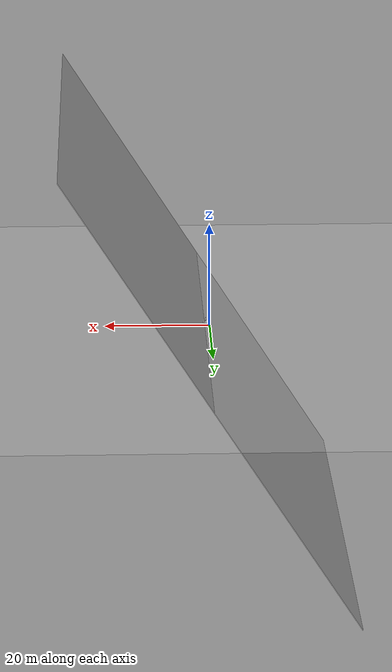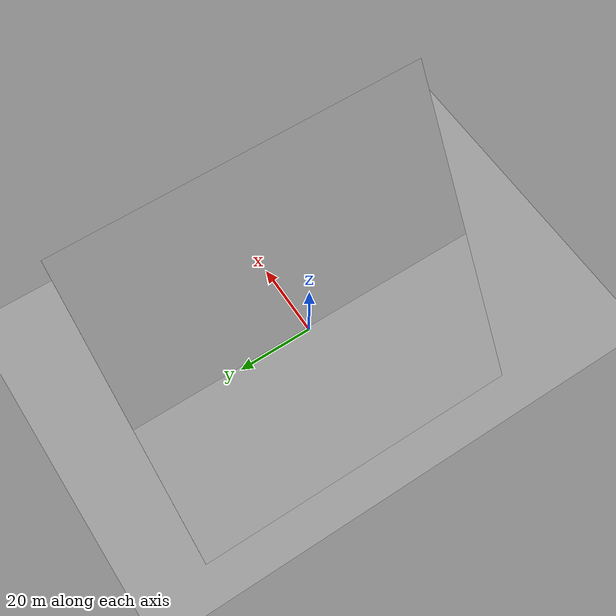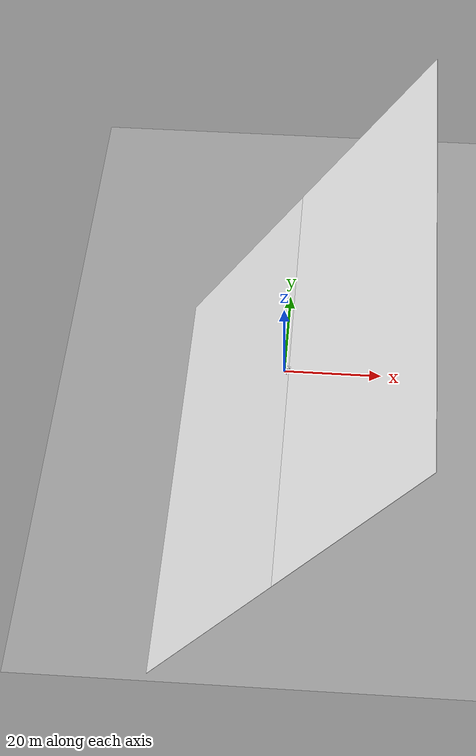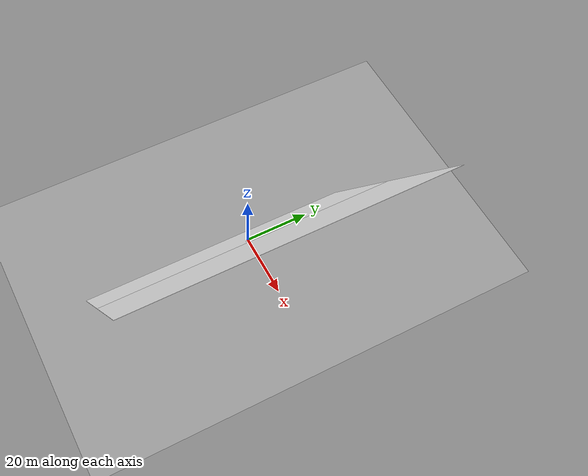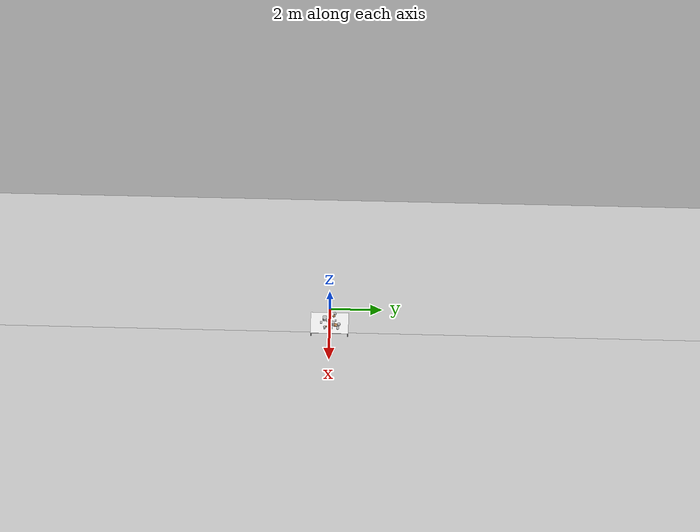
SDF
<sdf version="1.6">
 <world name="default">
  <model name="ground_plane">
   <static>1</static>
   <link name="link">
    <collision name="collision">
     <geometry><plane><normal>0 0 1</normal><size>100 100</size></plane></geometry>
     <surface><friction><ode><mu>100</mu><mu2>50</mu2></ode></friction></surface>
    </collision>
    <visual name="visual">
     <cast_shadows>0</cast_shadows>
     <geometry><plane><normal>0 0 1</normal><size>100 100</size></plane></geometry>
     <material>
      <script><uri>file://media/materials/scripts/gazebo.material</uri><name>Gazebo/Grey</name></script>
     </material>
    </visual>
   </link>
  </model>
  <model name="wall_plane">
   <pose>1.0 0 0 0 -1.0 0</pose>
   <static>1</static>
   <link name="link">
    <collision name="collision">
     <geometry><plane><normal>0 0 1</normal><size>100 100</size></plane></geometry>
     <surface><friction><ode><mu>100</mu><mu2>50</mu2></ode></friction></surface>
    </collision>
    <visual name="visual">
     <cast_shadows>0</cast_shadows>
     <geometry><plane><normal>0 0 1</normal><size>100 100</size></plane></geometry>
     <material>
      <script><uri>file://media/materials/scripts/gazebo.material</uri><name>Gazebo/White</name></script>
     </material>
    </visual>
   </link>
  </model>
  <gravity>0 0 -9.8</gravity>
  <magnetic_field>6e-06 2.3e-05 -4.2e-05</magnetic_field>
  <atmosphere type="adiabatic"/>
  <physics name="default_physics" default="0" type="ode">
   <max_step_size>0.001</max_step_size>
   <real_time_factor>1</real_time_factor>
   <real_time_update_rate>1000</real_time_update_rate>
  </physics>
  <scene><ambient>0.4 0.4 0.4 1</ambient><background>0.7 0.7 0.7 1</background><shadows>1</shadows></scene>
  <spherical_coordinates>
   <surface_model>EARTH_WGS84</surface_model>
   <latitude_deg>0</latitude_deg>
   <longitude_deg>0</longitude_deg>
   <elevation>0</elevation>
   <heading_deg>0</heading_deg>
  </spherical_coordinates>
  <model name="kinect2_victor_head">
   <pose>0.07 0 1.5 0 0.5 0</pose>
   <static>1</static>
   <link name="kinect2_victor_head">
    <inertial>
     <mass>1</mass>
     <inertia><ixx>1</ixx><ixy>0</ixy><ixz>0</ixz><iyy>1</iyy><iyz>0</iyz><izz>1</izz></inertia>
    </inertial>
    <collision name="collision"><geometry><box><size>0.1 0.1 0.1</size></box></geometry></collision>
    <visual name="visual"><geometry><box><size>0.1 0.1 0.1</size></box></geometry></visual>
    <sensor name="camera" type="depth">
     <camera name="__default__">
      <horizontal_fov>1.578</horizontal_fov>
      <image><width>1920</width><height>1080</height><format>B8G8R8</format></image>
      <clip><near>0.05</near><far>2.5</far></clip>
      <depth_camera><output>depths</output></depth_camera>
     </camera>
     <plugin name="kinect2_victor_head_plugin" filename="libgazebo_ros_openni_kinect.so">
      <cameraName>kinect2_victor_head</cameraName>
      <alwaysOn>1</alwaysOn>
      <updateRate>3</updateRate>
      <imageTopicName>hd/image_color_rect</imageTopicName>
      <depthImageTopicName>hd/image_depth_rect</depthImageTopicName>
      <pointCloudTopicName>hd/points</pointCloudTopicName>
      <cameraInfoTopicName>hd/camera_info</cameraInfoTopicName>
      <depthImageCameraInfoTopicName>hd/camera_info</depthImageCameraInfoTopicName>
      <frameName>kinect2_victor_head_optical_frame</frameName>
      <baseline>0.07</baseline>
      <distortion_k1>0.0</distortion_k1>
      <distortion_k2>0.0</distortion_k2>
      <distortion_k3>0.0</distortion_k3>
      <distortion_t1>0.0</distortion_t1>
      <distortion_t2>0.0</distortion_t2>
      <pointCloudCutoff>0.05</pointCloudCutoff>
      <robotNamespace>/</robotNamespace>
     </plugin>
     <always_on>1</always_on>
     <update_rate>3</update_rate>
    </sensor>
    <gravity>0</gravity>
   </link>
  </model>
  <model name="table">
   <static>1</static>
   <link name="link">
    <collision name="surface">
     <pose>0 0 1 0 -0 0</pose>
     <geometry><box><size>1.5 0.8 0.03</size></box></geometry>
     <surface><friction><ode><mu>0.6</mu><mu2>0.6</mu2></ode></friction></surface>
    </collision>
    <visual name="visual1">
     <pose>0 0 1 0 -0 0</pose>
     <geometry><box><size>1.4 0.8 0.04</size></box></geometry>
     <material>
      <script><uri>file://media/materials/scripts/gazebo.material</uri><name>Gazebo/White</name></script>
     </material>
    </visual>
    <collision name="front_left_leg">
     <pose>0.68 0.38 0.5 0 -0 0</pose>
     <geometry><cylinder><radius>0.02</radius><length>1</length></cylinder></geometry>
    </collision>
    <visual name="front_left_leg">
     <pose>0.68 0.38 0.5 0 -0 0</pose>
     <geometry><cylinder><radius>0.02</radius><length>1</length></cylinder></geometry>
     <material>
      <script><uri>file://media/materials/scripts/gazebo.material</uri><name>Gazebo/Grey</name></script>
     </material>
    </visual>
    <collision name="front_right_leg">
     <pose>0.68 -0.38 0.5 0 -0 0</pose>
     <geometry><cylinder><radius>0.02</radius><length>1</length></cylinder></geometry>
    </collision>
    <visual name="front_right_leg">
     <pose>0.68 -0.38 0.5 0 -0 0</pose>
     <geometry><cylinder><radius>0.02</radius><length>1</length></cylinder></geometry>
     <material>
      <script><uri>file://media/materials/scripts/gazebo.material</uri><name>Gazebo/Grey</name></script>
     </material>
    </visual>
    <collision name="back_right_leg">
     <pose>-0.68 -0.38 0.5 0 -0 0</pose>
     <geometry><cylinder><radius>0.02</radius><length>1</length></cylinder></geometry>
    </collision>
    <visual name="back_right_leg">
     <pose>-0.68 -0.38 0.5 0 -0 0</pose>
     <geometry><cylinder><radius>0.02</radius><length>1</length></cylinder></geometry>
     <material>
      <script><uri>file://media/materials/scripts/gazebo.material</uri><name>Gazebo/Grey</name></script>
     </material>
    </visual>
    <collision name="back_left_leg">
     <pose>-0.68 0.38 0.5 0 -0 0</pose>
     <geometry><cylinder><radius>0.02</radius><length>1</length></cylinder></geometry>
    </collision>
    <visual name="back_left_leg">
     <pose>-0.68 0.38 0.5 0 -0 0</pose>
     <geometry><cylinder><radius>0.02</radius><length>1</length></cylinder></geometry>
     <material>
      <script><uri>file://media/materials/scripts/gazebo.material</uri><name>Gazebo/Grey</name></script>
     </material>
    </visual>
    <inertial>
     <inertia><ixx>1</ixx><ixy>0</ixy><ixz>0</ixz><iyy>1</iyy><iyz>0</iyz><izz>1</izz></inertia>
     <mass>1</mass>
    </inertial>
   </link>
   <pose>0.8 0 -0.2 0 0 -1.5708</pose>
  </model>
  <model name="beer">
   <link name="link">
    <pose>0 0 0.115 0 -0 0</pose>
    <inertial>
     <mass>0.39</mass>
     <inertia><ixx>0.00058</ixx><ixy>0</ixy><ixz>0</ixz><iyy>0.00058</iyy><iyz>0</iyz><izz>0.00019</izz></inertia>
    </inertial>
    <collision name="collision">
     <geometry><cylinder><radius>0.055</radius><length>0.23</length></cylinder></geometry>
    </collision>
    <visual name="visual">
     <geometry><cylinder><radius>0.055</radius><length>0.23</length></cylinder></geometry>
     <material>
      <script>
       <uri>model://beer/materials/scripts</uri>
       <uri>model://beer/materials/textures</uri>
       <name>Beer/Diffuse</name>
      </script>
     </material>
    </visual>
   </link>
   <pose>1.00762 0.059581 0.815003 6e-06 4.7e-05 -0.133382</pose>
  </model>
  <light name="user_spot_light_0" type="spot">
   <pose>0 0 20 0 -0 0</pose>
   <diffuse>0.5 0.5 0.5 1</diffuse>
   <specular>0.1 0.1 0.1 1</specular>
   <direction>0 0 -1</direction>
   <attenuation>
    <range>20</range>
    <constant>0.5</constant>
    <linear>0.01</linear>
    <quadratic>0.001</quadratic>
   </attenuation>
   <cast_shadows>0</cast_shadows>
   <spot><inner_angle>0.6</inner_angle><outer_angle>1</outer_angle><falloff>1</falloff></spot>
  </light>
  <model name="wood_cube_10cm">
   <link name="link">
    <pose>0 0 0.05 0 -0 0</pose>
    <inertial>
     <mass>0.5167</mass>
     <inertia>
      <ixx>0.000861167</ixx>
      <ixy>0</ixy>
      <ixz>0</ixz>
      <iyy>0.000861167</iyy>
      <iyz>0</iyz>
      <izz>0.000861167</izz>
     </inertia>
    </inertial>
    <collision name="collision">
     <geometry><box><size>0.1 0.1 0.1</size></box></geometry>
     <surface>
      <contact>
       <poissons_ratio>0.347</poissons_ratio>
       <elastic_modulus>8.8e+09</elastic_modulus>
       <ode><kp>100000</kp><kd>100</kd><max_vel>100</max_vel><min_depth>0.001</min_depth></ode>
      </contact>
      <friction>
       <torsional>
        <coefficient>1</coefficient>
        <use_patch_radius>0</use_patch_radius>
        <surface_radius>0.01</surface_radius>
       </torsional>
      </friction>
     </surface>
    </collision>
    <visual name="visual">
     <geometry><box><size>0.1 0.1 0.1</size></box></geometry>
     <material>
      <script><uri>file://media/materials/scripts/gazebo.material</uri><name>Gazebo/Wood</name></script>
     </material>
    </visual>
   </link>
   <pose>0.893818 0.230326 0.813987 0 0 -0.171468</pose>
  </model>
  <model name="wood_cube_7_5cm">
   <link name="link">
    <pose>0 0 0.0375 0 -0 0</pose>
    <inertial>
     <mass>0.2249</mass>
     <inertia>
      <ixx>0.000210844</ixx>
      <ixy>0</ixy>
      <ixz>0</ixz>
      <iyy>0.000210844</iyy>
      <iyz>0</iyz>
      <izz>0.000210844</izz>
     </inertia>
    </inertial>
    <collision name="collision">
     <geometry><box><size>0.075 0.075 0.075</size></box></geometry>
     <surface>
      <contact>
       <poissons_ratio>0.347</poissons_ratio>
       <elastic_modulus>8.8e+09</elastic_modulus>
       <ode><kp>100000</kp><kd>100</kd><max_vel>100</max_vel><min_depth>0.001</min_depth></ode>
      </contact>
      <friction>
       <torsional>
        <coefficient>1</coefficient>
        <use_patch_radius>0</use_patch_radius>
        <surface_radius>0.01</surface_radius>
       </torsional>
      </friction>
     </surface>
    </collision>
    <visual name="visual">
     <geometry><box><size>0.075 0.075 0.075</size></box></geometry>
     <material>
      <script><uri>file://media/materials/scripts/gazebo.material</uri><name>Gazebo/Wood</name></script>
     </material>
    </visual>
   </link>
   <pose>0.5256 0.189053 0.851495 -0.877953 -1.57079 3.14159</pose>
  </model>
  <model name="beer_0">
   <link name="link">
    <pose>0 0 0.115 0 -0 0</pose>
    <inertial>
     <mass>0.39</mass>
     <inertia><ixx>0.00058</ixx><ixy>0</ixy><ixz>0</ixz><iyy>0.00058</iyy><iyz>0</iyz><izz>0.00019</izz></inertia>
    </inertial>
    <collision name="collision">
     <geometry><cylinder><radius>0.055</radius><length>0.161</length></cylinder></geometry>
    </collision>
    <visual name="visual">
     <geometry><cylinder><radius>0.055</radius><length>0.161</length></cylinder></geometry>
     <material>
      <script>
       <uri>model://beer/materials/scripts</uri>
       <uri>model://beer/materials/textures</uri>
       <name>Beer/Diffuse</name>
      </script>
     </material>
    </visual>
   </link>
   <pose>0.878092 0.345153 0.7805 4e-06 -1e-06 0.023814</pose>
  </model>
  <model name="wood_cube_5cm">
   <link name="link">
    <pose>0 0 0.025 0 -0 0</pose>
    <inertial>
     <mass>0.0565</mass>
     <inertia>
      <ixx>2.35417e-05</ixx>
      <ixy>0</ixy>
      <ixz>0</ixz>
      <iyy>2.35417e-05</iyy>
      <iyz>0</iyz>
      <izz>2.35417e-05</izz>
     </inertia>
    </inertial>
    <collision name="collision">
     <geometry><box><size>0.05 0.05 0.05</size></box></geometry>
     <surface>
      <contact>
       <poissons_ratio>0.347</poissons_ratio>
       <elastic_modulus>8.8e+09</elastic_modulus>
       <ode><kp>100000</kp><kd>1</kd><max_vel>1</max_vel><min_depth>0.001</min_depth></ode>
      </contact>
      <friction>
       <torsional>
        <coefficient>1</coefficient>
        <use_patch_radius>0</use_patch_radius>
        <surface_radius>0.05</surface_radius>
       </torsional>
      </friction>
     </surface>
    </collision>
    <visual name="visual">
     <geometry><box><size>0.05 0.05 0.05</size></box></geometry>
     <material>
      <script><uri>file://media/materials/scripts/gazebo.material</uri><name>Gazebo/Wood</name></script>
     </material>
    </visual>
   </link>
   <pose>0.94151 -0.113973 0.863999 -3.14159 -0 -1.43399</pose>
  </model>
  <audio><device>default</device></audio>
  <model name="beer_1">
   <link name="link">
    <pose>0 0 0.115 0 -0 0</pose>
    <inertial>
     <mass>0.39</mass>
     <inertia><ixx>0.00058</ixx><ixy>0</ixy><ixz>0</ixz><iyy>0.00058</iyy><iyz>0</iyz><izz>0.00019</izz></inertia>
    </inertial>
    <collision name="collision">
     <geometry><cylinder><radius>0.055</radius><length>0.345</length></cylinder></geometry>
    </collision>
    <visual name="visual">
     <geometry><cylinder><radius>0.055</radius><length>0.345</length></cylinder></geometry>
     <material>
      <script>
       <uri>model://beer/materials/scripts</uri>
       <uri>model://beer/materials/textures</uri>
       <name>Beer/Diffuse</name>
      </script>
     </material>
    </visual>
   </link>
   <pose>0.871925 0.127553 0.872496 2.5e-05 9.4e-05 0.10077</pose>
  </model>
  <model name="beer_2">
   <link name="link">
    <pose>0 0 0.115 0 -0 0</pose>
    <inertial>
     <mass>0.39</mass>
     <inertia><ixx>0.00058</ixx><ixy>0</ixy><ixz>0</ixz><iyy>0.00058</iyy><iyz>0</iyz><izz>0.00019</izz></inertia>
    </inertial>
    <collision name="collision">
     <geometry><cylinder><radius>0.0385</radius><length>0.23</length></cylinder></geometry>
    </collision>
    <visual name="visual">
     <geometry><cylinder><radius>0.0385</radius><length>0.23</length></cylinder></geometry>
     <material>
      <script>
       <uri>model://beer/materials/scripts</uri>
       <uri>model://beer/materials/textures</uri>
       <name>Beer/Diffuse</name>
      </script>
     </material>
    </visual>
   </link>
   <pose>1.0138 -0.176485 0.814995 0.000109 6e-05 2.05295</pose>
  </model>
  <model name="beer_3">
   <link name="link">
    <pose>0 0 0.115 0 -0 0</pose>
    <inertial>
     <mass>0.39</mass>
     <inertia><ixx>0.00058</ixx><ixy>0</ixy><ixz>0</ixz><iyy>0.00058</iyy><iyz>0</iyz><izz>0.00019</izz></inertia>
    </inertial>
    <collision name="collision">
     <geometry><cylinder><radius>0.0825</radius><length>0.23</length></cylinder></geometry>
    </collision>
    <visual name="visual">
     <geometry><cylinder><radius>0.0825</radius><length>0.23</length></cylinder></geometry>
     <material>
      <script>
       <uri>model://beer/materials/scripts</uri>
       <uri>model://beer/materials/textures</uri>
       <name>Beer/Diffuse</name>
      </script>
     </material>
    </visual>
   </link>
   <pose>0.661541 -0.179097 0.815001 -3e-06 1e-05 -0.543827</pose>
  </model>
  <model name="can_fanta">
   <link name="link">
    <inertial>
     <mass>0.39</mass>
     <inertia>
      <ixx>0.00055575</ixx>
      <ixy>0</ixy>
      <ixz>0</ixz>
      <iyy>0.00055575</iyy>
      <iyz>0</iyz>
      <izz>0.0001755</izz>
     </inertia>
    </inertial>
    <visual name="visual">
     <geometry><cylinder><radius>0.03</radius><length>0.13</length></cylinder></geometry>
     <material>
      <script>
       <uri>model://can_fanta/materials/scripts</uri>
       <uri>model://can_fanta/materials/textures</uri>
       <name>fanta</name>
      </script>
     </material>
    </visual>
    <collision name="collision">
     <geometry><cylinder><radius>0.03</radius><length>0.13</length></cylinder></geometry>
    </collision>
   </link>
   <static>0</static>
   <pose>0.715647 0.227222 0.815203 -2e-06 -3e-05 1.57095</pose>
  </model>
  <model name="can_pepsi">
   <link name="link">
    <inertial>
     <mass>0.39</mass>
     <inertia>
      <ixx>0.00055575</ixx>
      <ixy>0</ixy>
      <ixz>0</ixz>
      <iyy>0.00055575</iyy>
      <iyz>0</iyz>
      <izz>0.0001755</izz>
     </inertia>
    </inertial>
    <visual name="visual">
     <geometry><cylinder><radius>0.03</radius><length>0.195</length></cylinder></geometry>
     <material>
      <script>
       <uri>model://can_pepsi/materials/scripts</uri>
       <uri>model://can_pepsi/materials/textures</uri>
       <name>pepsi</name>
      </script>
     </material>
    </visual>
    <collision name="collision">
     <geometry><cylinder><radius>0.03</radius><length>0.195</length></cylinder></geometry>
    </collision>
   </link>
   <static>0</static>
   <pose>0.736094 -0.08188 0.815203 2.5e-05 1e-05 1.37378</pose>
  </model>
  <model name="can_sprite">
   <link name="link">
    <inertial>
     <mass>0.39</mass>
     <inertia>
      <ixx>0.00055575</ixx>
      <ixy>0</ixy>
      <ixz>0</ixz>
      <iyy>0.00055575</iyy>
      <iyz>0</iyz>
      <izz>0.0001755</izz>
     </inertia>
    </inertial>
    <visual name="visual">
     <geometry><cylinder><radius>0.03</radius><length>0.13</length></cylinder></geometry>
     <material>
      <script>
       <uri>model://can_sprite/materials/scripts</uri>
       <uri>model://can_sprite/materials/textures</uri>
       <name>sprite</name>
      </script>
     </material>
    </visual>
    <collision name="collision">
     <geometry><cylinder><radius>0.03</radius><length>0.13</length></cylinder></geometry>
    </collision>
   </link>
   <static>0</static>
   <pose>0.755143 0.127648 0.815203 2.8e-05 1.1e-05 -1.19596</pose>
  </model>
  <model name="can_fanta_0">
   <link name="link">
    <inertial>
     <mass>0.39</mass>
     <inertia>
      <ixx>0.00055575</ixx>
      <ixy>0</ixy>
      <ixz>0</ixz>
      <iyy>0.00055575</iyy>
      <iyz>0</iyz>
      <izz>0.0001755</izz>
     </inertia>
    </inertial>
    <visual name="visual">
     <geometry><cylinder><radius>0.03</radius><length>0.13</length></cylinder></geometry>
     <material>
      <script>
       <uri>model://can_fanta/materials/scripts</uri>
       <uri>model://can_fanta/materials/textures</uri>
       <name>fanta</name>
      </script>
     </material>
    </visual>
    <collision name="collision">
     <geometry><cylinder><radius>0.03</radius><length>0.13</length></cylinder></geometry>
    </collision>
   </link>
   <static>0</static>
   <pose>0.917341 0.049618 0.815203 1.1e-05 4e-06 -1.1856</pose>
  </model>
  <model name="can_pepsi_0">
   <link name="link">
    <inertial>
     <mass>0.39</mass>
     <inertia>
      <ixx>0.00055575</ixx>
      <ixy>0</ixy>
      <ixz>0</ixz>
      <iyy>0.00055575</iyy>
      <iyz>0</iyz>
      <izz>0.0001755</izz>
     </inertia>
    </inertial>
    <visual name="visual">
     <geometry><cylinder><radius>0.045</radius><length>0.13</length></cylinder></geometry>
     <material>
      <script>
       <uri>model://can_pepsi/materials/scripts</uri>
       <uri>model://can_pepsi/materials/textures</uri>
       <name>pepsi</name>
      </script>
     </material>
    </visual>
    <collision name="collision">
     <geometry><cylinder><radius>0.045</radius><length>0.13</length></cylinder></geometry>
    </collision>
   </link>
   <static>0</static>
   <pose>0.793147 -0.306883 0.815203 2.4e-05 1e-05 -1.56889</pose>
  </model>
  <model name="can_sprite_0">
   <link name="link">
    <inertial>
     <mass>0.39</mass>
     <inertia>
      <ixx>0.00055575</ixx>
      <ixy>0</ixy>
      <ixz>0</ixz>
      <iyy>0.00055575</iyy>
      <iyz>0</iyz>
      <izz>0.0001755</izz>
     </inertia>
    </inertial>
    <visual name="visual">
     <geometry><cylinder><radius>0.045</radius><length>0.195</length></cylinder></geometry>
     <material>
      <script>
       <uri>model://can_sprite/materials/scripts</uri>
       <uri>model://can_sprite/materials/textures</uri>
       <name>sprite</name>
      </script>
     </material>
    </visual>
    <collision name="collision">
     <geometry><cylinder><radius>0.045</radius><length>0.195</length></cylinder></geometry>
    </collision>
   </link>
   <static>0</static>
   <pose>1.01666 0.308579 0.815203 -4e-06 -3.7e-05 -1.35763</pose>
  </model>
  <model name="can_coke">
   <link name="link">
    <pose>0.003937 0.004724 -0.18 0 -0 0</pose>
    <inertial>
     <mass>0.39</mass>
     <inertia>
      <ixx>0.00055575</ixx>
      <ixy>0</ixy>
      <ixz>0</ixz>
      <iyy>0.00055575</iyy>
      <iyz>0</iyz>
      <izz>0.0001755</izz>
     </inertia>
    </inertial>
    <collision name="collision">
     <geometry><cylinder><radius>0.03</radius><length>0.13</length></cylinder></geometry>
    </collision>
    <visual name="visual">
     <material>
      <script>
       <uri>model://can_coke/materials/scripts</uri>
       <uri>model://can_coke/materials/textures</uri>
       <name>coke</name>
      </script>
     </material>
     <geometry><cylinder><radius>0.03</radius><length>0.13</length></cylinder></geometry>
    </visual>
   </link>
   <pose>0.60209 0.305282 0.812427 -0.011213 0.004041 -2.81268</pose>
  </model>
  <model name="can_coke_0">
   <link name="link">
    <pose>0.003937 0.004724 -0.18 0 -0 0</pose>
    <inertial>
     <mass>0.39</mass>
     <inertia>
      <ixx>0.00055575</ixx>
      <ixy>0</ixy>
      <ixz>0</ixz>
      <iyy>0.00055575</iyy>
      <iyz>0</iyz>
      <izz>0.0001755</izz>
     </inertia>
    </inertial>
    <collision name="collision">
     <geometry><cylinder><radius>0.045</radius><length>0.13</length></cylinder></geometry>
    </collision>
    <visual name="visual">
     <material>
      <script>
       <uri>model://can_coke/materials/scripts</uri>
       <uri>model://can_coke/materials/textures</uri>
       <name>coke</name>
      </script>
     </material>
     <geometry><cylinder><radius>0.045</radius><length>0.13</length></cylinder></geometry>
    </visual>
   </link>
   <pose>0.70209 0.205282 1.812427 -0.011213 0.004041 -2.81268</pose>
  </model>
 </world>
</sdf>
